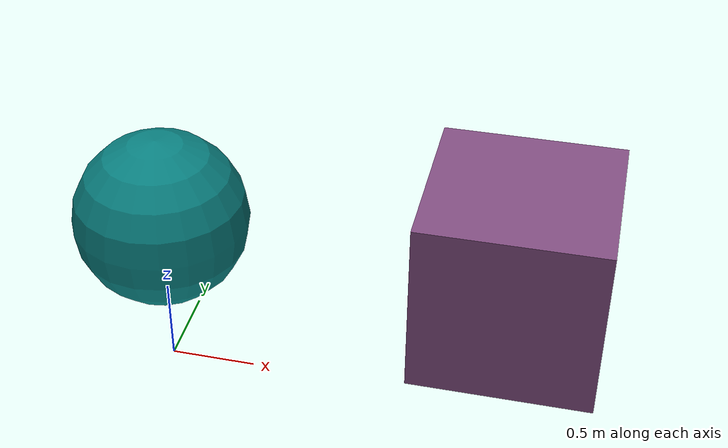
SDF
<sdf version="1.4">
  <world name="world_1">
    <include>
      <uri>model://sun</uri>
    </include>
    <physics type="ode">
      <gravity>0.0 0.0 -9.81</gravity>
      <ode>
        <solver>
          <type>quick</type>
          <iters>20</iters>
          <sor>1.3</sor>
        </solver>
        <constraints>
          <cfm>0</cfm>
          <erp>0.2</erp>
          <contact_max_correcting_vel>100.0</contact_max_correcting_vel>
          <contact_surface_layer>0.0</contact_surface_layer>
        </constraints>
      </ode>
      <max_contacts>250</max_contacts>
      <max_step_size>0.001</max_step_size>
    </physics>
    <model name="model_1">
      <pose>0.0 0.0 1.0 0.0 0.0 0.0</pose>
      <link name="link_1">
        <velocity_decay linear="0.0" angular="0.0" />
        <pose>0.0 0.0 0.0 0.0 0.0 0.0</pose>
        <inertial>
          <pose>0.0 0.0 0.0 0.0 0.0 0.0</pose>
          <inertia>
            <ixx>1.0</ixx>
            <ixy>0.0</ixy>
            <ixz>0.0</ixz>
            <iyy>1.0</iyy>
            <iyz>0.0</iyz>
            <izz>1.0</izz>
          </inertia>
          <mass>10.0</mass>
        </inertial>
        <visual name="visual_sphere">
          <pose>0.0 0.0 0.0 0.0 0.0 0.0</pose>
          <geometry>
            <sphere>
              <radius>0.5</radius>
            </sphere>
          </geometry>
          <material>
            <ambient>0.03 0.5 0.5 1.0</ambient>
            <script>Gazebo/White</script>
          </material>
          <cast_shadows>true</cast_shadows>
          <laser_retro>100.0</laser_retro>
        </visual>
        <collision name="collision_sphere">
          <pose>0.0 0.0 0.0 0.0 0.0 0.0</pose>
          <max_contacts>250</max_contacts>
          <geometry>
            <sphere>
              <radius>0.5</radius>
            </sphere>
          </geometry>
          <surface>
            <friction>
              <ode>
                <mu>0.5</mu>
                <mu2>0.2</mu2>
                <fdir1>1.0 0 0</fdir1>
                <slip1>0</slip1>
                <slip2>0</slip2>
              </ode>
            </friction>
            <bounce>
              <restitution_coefficient>0</restitution_coefficient>
              <threshold>1000000.0</threshold>
            </bounce>
            <contact>
              <ode>
                <soft_cfm>0</soft_cfm>
                <soft_erp>0.2</soft_erp>
                <kp>1e15</kp>
                <kd>1e13</kd>
                <max_vel>100.0</max_vel>
                <min_depth>0.0001</min_depth>
              </ode>
            </contact>
          </surface>
          <laser_retro>100.0</laser_retro>
        </collision>
        <sensor name="sensor_camera" type="camera">
          <pose>0.0 0.0 0.0 1.0 0.0 0.0</pose>
          <camera>
            <horizontal_fov>1.57</horizontal_fov>
            <image>
              <width>256</width>
              <height>160</height>
              <format>BAYER_BGGR8</format>
            </image>
            <clip near="0.6" far="100.0" />
            <save enabled="false" path="/tmp" />
          </camera>
          <plugin name="plugin_1" filename="libgazebo_ros_new_camera.so">
            <alwaysOn>1</alwaysOn>
            <updateRate>1.0</updateRate>
            <imageTopicName>image_raw</imageTopicName>
            <pointCloudTopicName>points</pointCloudTopicName>
            <cameraInfoTopicName>camera_info</cameraInfoTopicName>
            <frameName>world</frameName>
            <pointCloudCutoff>0.5</pointCloudCutoff>
            <distortion_k1>0.00000001</distortion_k1>
            <distortion_k2>0.00000001</distortion_k2>
            <distortion_k3>0.00000001</distortion_k3>
            <distortion_t1>0.00000001</distortion_t1>
            <distortion_t2>0.00000001</distortion_t2>
          </plugin>
          <always_on>true</always_on>
          <update_rate>2.0</update_rate>
        </sensor>
        <gravity>false</gravity>
        <self_collide>true</self_collide>
        <kinematic>false</kinematic>
        <visual name="visual_box_target">
          <pose>2.0 0.0 0.0 0.0 0.0 0.0</pose>
          <geometry>
            <box>
              <size>1.0 1.0 1.0</size>
            </box>
          </geometry>
          <material>
            <ambient>0.5 0.3 0.5 1.0</ambient>
            <script>Gazebo/White</script>
          </material>
          <cast_shadows>true</cast_shadows>
          <laser_retro>100.0</laser_retro>
        </visual>
      </link>
      <static>false</static>
    </model>
  </world>
</sdf>
